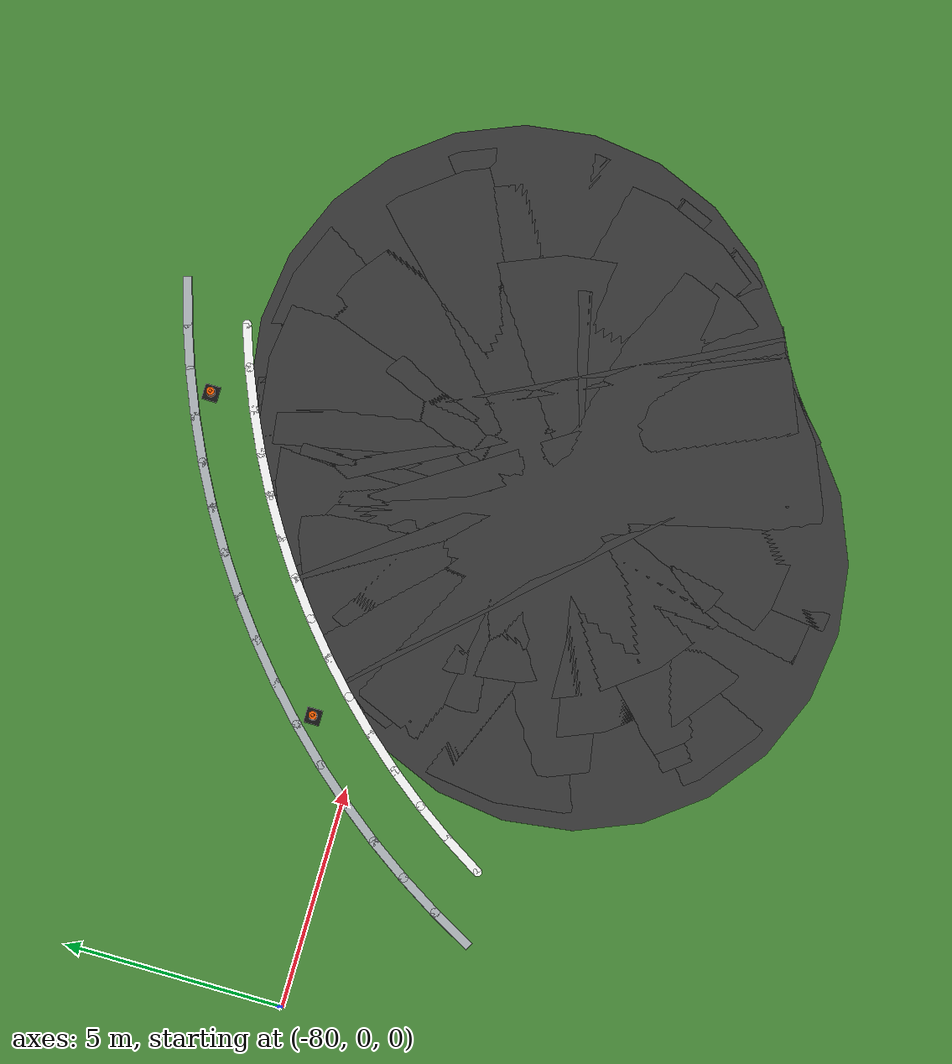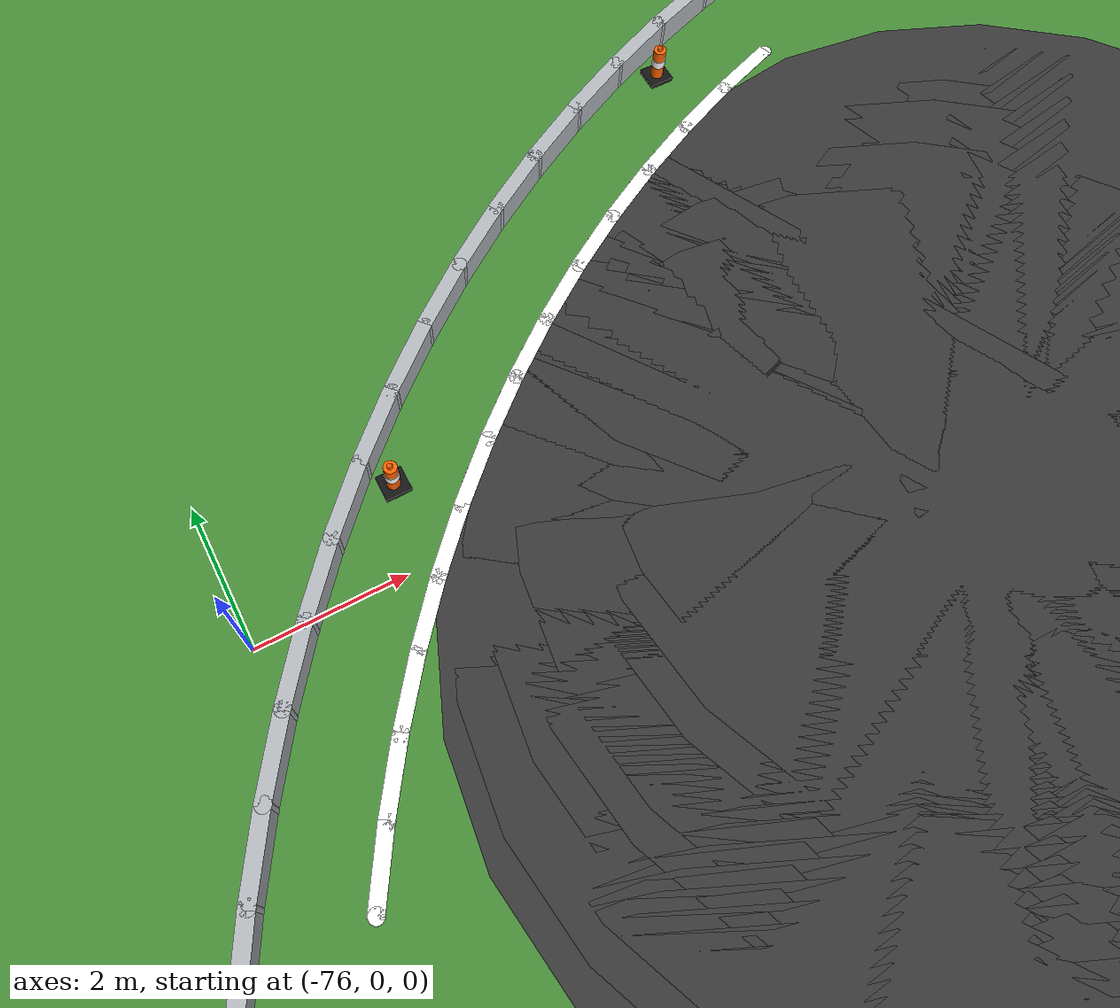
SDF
<sdf version="1.6">
 <world name="sem_silesia_ring_2026">
  <model name="ground_plane">
   <static>true</static>
   <link name="link">
    <collision name="collision">
     <geometry><plane><normal>0 0 1</normal><size>600 600</size></plane></geometry>
     <surface><friction><ode><mu>0.6</mu><mu2>0.6</mu2></ode></friction></surface>
    </collision>
    <visual name="visual">
     <geometry><plane><normal>0 0 1</normal><size>600 600</size></plane></geometry>
     <material><ambient>0.28 0.55 0.22 1</ambient><diffuse>0.28 0.55 0.22 1</diffuse></material>
    </visual>
   </link>
  </model>
  <model name="road_L_s12">
   <static>true</static>
   <pose>-65.2827 -1.1712 0.0030 0 0 3.5779</pose>
   <link name="link">
    <visual name="v">
     <geometry><box><size>0.6957 12.0000 0.0060</size></box></geometry>
     <material><ambient>0.22 0.22 0.22 1</ambient><diffuse>0.22 0.22 0.22 1</diffuse></material>
    </visual>
    <collision name="c">
     <geometry><box><size>0.6957 12.0000 0.0060</size></box></geometry>
     <surface><friction><ode><mu>0.9</mu><mu2>0.9</mu2></ode></friction></surface>
    </collision>
   </link>
  </model>
  <model name="road_L_jnt13">
   <static>true</static>
   <pose>-65.4796 -1.2651 0.0030 0 0 0</pose>
   <link name="link">
    <visual name="v">
     <geometry><cylinder><radius>6.0000</radius><length>0.0060</length></cylinder></geometry>
     <material><ambient>0.22 0.22 0.22 1</ambient><diffuse>0.22 0.22 0.22 1</diffuse></material>
    </visual>
    <collision name="c">
     <geometry><cylinder><radius>6.0000</radius><length>0.0060</length></cylinder></geometry>
     <surface><friction><ode><mu>0.9</mu><mu2>0.9</mu2></ode></friction></surface>
    </collision>
   </link>
  </model>
  <model name="road_L_s13">
   <static>true</static>
   <pose>-65.6749 -1.3624 0.0030 0 0 3.6128</pose>
   <link name="link">
    <visual name="v">
     <geometry><box><size>0.6957 12.0000 0.0060</size></box></geometry>
     <material><ambient>0.22 0.22 0.22 1</ambient><diffuse>0.22 0.22 0.22 1</diffuse></material>
    </visual>
    <collision name="c">
     <geometry><box><size>0.6957 12.0000 0.0060</size></box></geometry>
     <surface><friction><ode><mu>0.9</mu><mu2>0.9</mu2></ode></friction></surface>
    </collision>
   </link>
  </model>
  <model name="road_L_jnt14">
   <static>true</static>
   <pose>-65.8684 -1.4632 0.0030 0 0 0</pose>
   <link name="link">
    <visual name="v">
     <geometry><cylinder><radius>6.0000</radius><length>0.0060</length></cylinder></geometry>
     <material><ambient>0.22 0.22 0.22 1</ambient><diffuse>0.22 0.22 0.22 1</diffuse></material>
    </visual>
    <collision name="c">
     <geometry><cylinder><radius>6.0000</radius><length>0.0060</length></cylinder></geometry>
     <surface><friction><ode><mu>0.9</mu><mu2>0.9</mu2></ode></friction></surface>
    </collision>
   </link>
  </model>
  <model name="road_L_s14">
   <static>true</static>
   <pose>-66.0601 -1.5673 0.0030 0 0 3.6477</pose>
   <link name="link">
    <visual name="v">
     <geometry><box><size>0.6957 12.0000 0.0060</size></box></geometry>
     <material><ambient>0.22 0.22 0.22 1</ambient><diffuse>0.22 0.22 0.22 1</diffuse></material>
    </visual>
    <collision name="c">
     <geometry><box><size>0.6957 12.0000 0.0060</size></box></geometry>
     <surface><friction><ode><mu>0.9</mu><mu2>0.9</mu2></ode></friction></surface>
    </collision>
   </link>
  </model>
  <model name="road_L_jnt15">
   <static>true</static>
   <pose>-66.2500 -1.6747 0.0030 0 0 0</pose>
   <link name="link">
    <visual name="v">
     <geometry><cylinder><radius>6.0000</radius><length>0.0060</length></cylinder></geometry>
     <material><ambient>0.22 0.22 0.22 1</ambient><diffuse>0.22 0.22 0.22 1</diffuse></material>
    </visual>
    <collision name="c">
     <geometry><cylinder><radius>6.0000</radius><length>0.0060</length></cylinder></geometry>
     <surface><friction><ode><mu>0.9</mu><mu2>0.9</mu2></ode></friction></surface>
    </collision>
   </link>
  </model>
  <model name="road_L_s15">
   <static>true</static>
   <pose>-66.4380 -1.7854 0.0030 0 0 3.6826</pose>
   <link name="link">
    <visual name="v">
     <geometry><box><size>0.6957 12.0000 0.0060</size></box></geometry>
     <material><ambient>0.22 0.22 0.22 1</ambient><diffuse>0.22 0.22 0.22 1</diffuse></material>
    </visual>
    <collision name="c">
     <geometry><box><size>0.6957 12.0000 0.0060</size></box></geometry>
     <surface><friction><ode><mu>0.9</mu><mu2>0.9</mu2></ode></friction></surface>
    </collision>
   </link>
  </model>
  <model name="road_L_jnt16">
   <static>true</static>
   <pose>-66.6240 -1.8994 0.0030 0 0 0</pose>
   <link name="link">
    <visual name="v">
     <geometry><cylinder><radius>6.0000</radius><length>0.0060</length></cylinder></geometry>
     <material><ambient>0.22 0.22 0.22 1</ambient><diffuse>0.22 0.22 0.22 1</diffuse></material>
    </visual>
    <collision name="c">
     <geometry><cylinder><radius>6.0000</radius><length>0.0060</length></cylinder></geometry>
     <surface><friction><ode><mu>0.9</mu><mu2>0.9</mu2></ode></friction></surface>
    </collision>
   </link>
  </model>
  <model name="road_L_s16">
   <static>true</static>
   <pose>-66.8080 -2.0166 0.0030 0 0 3.7176</pose>
   <link name="link">
    <visual name="v">
     <geometry><box><size>0.6957 12.0000 0.0060</size></box></geometry>
     <material><ambient>0.22 0.22 0.22 1</ambient><diffuse>0.22 0.22 0.22 1</diffuse></material>
    </visual>
    <collision name="c">
     <geometry><box><size>0.6957 12.0000 0.0060</size></box></geometry>
     <surface><friction><ode><mu>0.9</mu><mu2>0.9</mu2></ode></friction></surface>
    </collision>
   </link>
  </model>
  <model name="road_L_jnt17">
   <static>true</static>
   <pose>-66.9899 -2.1370 0.0030 0 0 0</pose>
   <link name="link">
    <visual name="v">
     <geometry><cylinder><radius>6.0000</radius><length>0.0060</length></cylinder></geometry>
     <material><ambient>0.22 0.22 0.22 1</ambient><diffuse>0.22 0.22 0.22 1</diffuse></material>
    </visual>
    <collision name="c">
     <geometry><cylinder><radius>6.0000</radius><length>0.0060</length></cylinder></geometry>
     <surface><friction><ode><mu>0.9</mu><mu2>0.9</mu2></ode></friction></surface>
    </collision>
   </link>
  </model>
  <model name="road_L_s17">
   <static>true</static>
   <pose>-67.1697 -2.2606 0.0030 0 0 3.7525</pose>
   <link name="link">
    <visual name="v">
     <geometry><box><size>0.6957 12.0000 0.0060</size></box></geometry>
     <material><ambient>0.22 0.22 0.22 1</ambient><diffuse>0.22 0.22 0.22 1</diffuse></material>
    </visual>
    <collision name="c">
     <geometry><box><size>0.6957 12.0000 0.0060</size></box></geometry>
     <surface><friction><ode><mu>0.9</mu><mu2>0.9</mu2></ode></friction></surface>
    </collision>
   </link>
  </model>
  <model name="road_L_jnt18">
   <static>true</static>
   <pose>-67.3473 -2.3873 0.0030 0 0 0</pose>
   <link name="link">
    <visual name="v">
     <geometry><cylinder><radius>6.0000</radius><length>0.0060</length></cylinder></geometry>
     <material><ambient>0.22 0.22 0.22 1</ambient><diffuse>0.22 0.22 0.22 1</diffuse></material>
    </visual>
    <collision name="c">
     <geometry><cylinder><radius>6.0000</radius><length>0.0060</length></cylinder></geometry>
     <surface><friction><ode><mu>0.9</mu><mu2>0.9</mu2></ode></friction></surface>
    </collision>
   </link>
  </model>
  <model name="road_L_s18">
   <static>true</static>
   <pose>-67.5227 -2.5171 0.0030 0 0 3.7874</pose>
   <link name="link">
    <visual name="v">
     <geometry><box><size>0.6957 12.0000 0.0060</size></box></geometry>
     <material><ambient>0.22 0.22 0.22 1</ambient><diffuse>0.22 0.22 0.22 1</diffuse></material>
    </visual>
    <collision name="c">
     <geometry><box><size>0.6957 12.0000 0.0060</size></box></geometry>
     <surface><friction><ode><mu>0.9</mu><mu2>0.9</mu2></ode></friction></surface>
    </collision>
   </link>
  </model>
  <model name="road_L_jnt19">
   <static>true</static>
   <pose>-67.6958 -2.6499 0.0030 0 0 0</pose>
   <link name="link">
    <visual name="v">
     <geometry><cylinder><radius>6.0000</radius><length>0.0060</length></cylinder></geometry>
     <material><ambient>0.22 0.22 0.22 1</ambient><diffuse>0.22 0.22 0.22 1</diffuse></material>
    </visual>
    <collision name="c">
     <geometry><cylinder><radius>6.0000</radius><length>0.0060</length></cylinder></geometry>
     <surface><friction><ode><mu>0.9</mu><mu2>0.9</mu2></ode></friction></surface>
    </collision>
   </link>
  </model>
  <model name="road_L_s19">
   <static>true</static>
   <pose>-67.8665 -2.7857 0.0030 0 0 3.8223</pose>
   <link name="link">
    <visual name="v">
     <geometry><box><size>0.6957 12.0000 0.0060</size></box></geometry>
     <material><ambient>0.22 0.22 0.22 1</ambient><diffuse>0.22 0.22 0.22 1</diffuse></material>
    </visual>
    <collision name="c">
     <geometry><box><size>0.6957 12.0000 0.0060</size></box></geometry>
     <surface><friction><ode><mu>0.9</mu><mu2>0.9</mu2></ode></friction></surface>
    </collision>
   </link>
  </model>
  <model name="road_L_jnt20">
   <static>true</static>
   <pose>-68.0348 -2.9244 0.0030 0 0 0</pose>
   <link name="link">
    <visual name="v">
     <geometry><cylinder><radius>6.0000</radius><length>0.0060</length></cylinder></geometry>
     <material><ambient>0.22 0.22 0.22 1</ambient><diffuse>0.22 0.22 0.22 1</diffuse></material>
    </visual>
    <collision name="c">
     <geometry><cylinder><radius>6.0000</radius><length>0.0060</length></cylinder></geometry>
     <surface><friction><ode><mu>0.9</mu><mu2>0.9</mu2></ode></friction></surface>
    </collision>
   </link>
  </model>
  <model name="road_L_s20">
   <static>true</static>
   <pose>-68.2007 -3.0661 0.0030 0 0 3.8572</pose>
   <link name="link">
    <visual name="v">
     <geometry><box><size>0.6957 12.0000 0.0060</size></box></geometry>
     <material><ambient>0.22 0.22 0.22 1</ambient><diffuse>0.22 0.22 0.22 1</diffuse></material>
    </visual>
    <collision name="c">
     <geometry><box><size>0.6957 12.0000 0.0060</size></box></geometry>
     <surface><friction><ode><mu>0.9</mu><mu2>0.9</mu2></ode></friction></surface>
    </collision>
   </link>
  </model>
  <model name="road_L_jnt21">
   <static>true</static>
   <pose>-68.3641 -3.2107 0.0030 0 0 0</pose>
   <link name="link">
    <visual name="v">
     <geometry><cylinder><radius>6.0000</radius><length>0.0060</length></cylinder></geometry>
     <material><ambient>0.22 0.22 0.22 1</ambient><diffuse>0.22 0.22 0.22 1</diffuse></material>
    </visual>
    <collision name="c">
     <geometry><cylinder><radius>6.0000</radius><length>0.0060</length></cylinder></geometry>
     <surface><friction><ode><mu>0.9</mu><mu2>0.9</mu2></ode></friction></surface>
    </collision>
   </link>
  </model>
  <model name="road_L_s21">
   <static>true</static>
   <pose>-68.5250 -3.3581 0.0030 0 0 3.8921</pose>
   <link name="link">
    <visual name="v">
     <geometry><box><size>0.6957 12.0000 0.0060</size></box></geometry>
     <material><ambient>0.22 0.22 0.22 1</ambient><diffuse>0.22 0.22 0.22 1</diffuse></material>
    </visual>
    <collision name="c">
     <geometry><box><size>0.6957 12.0000 0.0060</size></box></geometry>
     <surface><friction><ode><mu>0.9</mu><mu2>0.9</mu2></ode></friction></surface>
    </collision>
   </link>
  </model>
  <model name="road_L_jnt22">
   <static>true</static>
   <pose>-68.6832 -3.5083 0.0030 0 0 0</pose>
   <link name="link">
    <visual name="v">
     <geometry><cylinder><radius>6.0000</radius><length>0.0060</length></cylinder></geometry>
     <material><ambient>0.22 0.22 0.22 1</ambient><diffuse>0.22 0.22 0.22 1</diffuse></material>
    </visual>
    <collision name="c">
     <geometry><cylinder><radius>6.0000</radius><length>0.0060</length></cylinder></geometry>
     <surface><friction><ode><mu>0.9</mu><mu2>0.9</mu2></ode></friction></surface>
    </collision>
   </link>
  </model>
  <model name="wl_Lo_jnt6">
   <static>true</static>
   <pose>-65.6859 4.9994 0.0050 0 0 0</pose>
   <link name="link">
    <visual name="v">
     <geometry><cylinder><radius>0.1000</radius><length>0.0040</length></cylinder></geometry>
     <material><ambient>1 1 1 1</ambient><diffuse>1 1 1 1</diffuse></material>
    </visual>
    <collision name="c">
     <geometry><cylinder><radius>0.1000</radius><length>0.0040</length></cylinder></geometry>
     <surface><friction><ode><mu>0.9</mu><mu2>0.9</mu2></ode></friction></surface>
    </collision>
   </link>
  </model>
  <model name="wl_Lo_s6">
   <static>true</static>
   <pose>-66.1420 4.8446 0.0050 0 0 3.4819</pose>
   <link name="link">
    <visual name="v">
     <geometry><box><size>1.0185 0.2000 0.0040</size></box></geometry>
     <material><ambient>1 1 1 1</ambient><diffuse>1 1 1 1</diffuse></material>
    </visual>
    <collision name="c">
     <geometry><box><size>1.0185 0.2000 0.0040</size></box></geometry>
     <surface><friction><ode><mu>0.9</mu><mu2>0.9</mu2></ode></friction></surface>
    </collision>
   </link>
  </model>
  <model name="wl_Lo_jnt7">
   <static>true</static>
   <pose>-66.5940 4.6779 0.0050 0 0 0</pose>
   <link name="link">
    <visual name="v">
     <geometry><cylinder><radius>0.1000</radius><length>0.0040</length></cylinder></geometry>
     <material><ambient>1 1 1 1</ambient><diffuse>1 1 1 1</diffuse></material>
    </visual>
    <collision name="c">
     <geometry><cylinder><radius>0.1000</radius><length>0.0040</length></cylinder></geometry>
     <surface><friction><ode><mu>0.9</mu><mu2>0.9</mu2></ode></friction></surface>
    </collision>
   </link>
  </model>
  <model name="wl_Lo_s7">
   <static>true</static>
   <pose>-67.0414 4.4994 0.0050 0 0 3.5343</pose>
   <link name="link">
    <visual name="v">
     <geometry><box><size>1.0185 0.2000 0.0040</size></box></geometry>
     <material><ambient>1 1 1 1</ambient><diffuse>1 1 1 1</diffuse></material>
    </visual>
    <collision name="c">
     <geometry><box><size>1.0185 0.2000 0.0040</size></box></geometry>
     <surface><friction><ode><mu>0.9</mu><mu2>0.9</mu2></ode></friction></surface>
    </collision>
   </link>
  </model>
  <model name="wl_Lo_jnt8">
   <static>true</static>
   <pose>-67.4840 4.3092 0.0050 0 0 0</pose>
   <link name="link">
    <visual name="v">
     <geometry><cylinder><radius>0.1000</radius><length>0.0040</length></cylinder></geometry>
     <material><ambient>1 1 1 1</ambient><diffuse>1 1 1 1</diffuse></material>
    </visual>
    <collision name="c">
     <geometry><cylinder><radius>0.1000</radius><length>0.0040</length></cylinder></geometry>
     <surface><friction><ode><mu>0.9</mu><mu2>0.9</mu2></ode></friction></surface>
    </collision>
   </link>
  </model>
  <model name="wl_Lo_s8">
   <static>true</static>
   <pose>-67.9214 4.1076 0.0050 0 0 3.5867</pose>
   <link name="link">
    <visual name="v">
     <geometry><box><size>1.0185 0.2000 0.0040</size></box></geometry>
     <material><ambient>1 1 1 1</ambient><diffuse>1 1 1 1</diffuse></material>
    </visual>
    <collision name="c">
     <geometry><box><size>1.0185 0.2000 0.0040</size></box></geometry>
     <surface><friction><ode><mu>0.9</mu><mu2>0.9</mu2></ode></friction></surface>
    </collision>
   </link>
  </model>
  <model name="wl_Lo_jnt9">
   <static>true</static>
   <pose>-68.3534 3.8945 0.0050 0 0 0</pose>
   <link name="link">
    <visual name="v">
     <geometry><cylinder><radius>0.1000</radius><length>0.0040</length></cylinder></geometry>
     <material><ambient>1 1 1 1</ambient><diffuse>1 1 1 1</diffuse></material>
    </visual>
    <collision name="c">
     <geometry><cylinder><radius>0.1000</radius><length>0.0040</length></cylinder></geometry>
     <surface><friction><ode><mu>0.9</mu><mu2>0.9</mu2></ode></friction></surface>
    </collision>
   </link>
  </model>
  <model name="wl_Lo_s9">
   <static>true</static>
   <pose>-68.7797 3.6702 0.0050 0 0 3.6390</pose>
   <link name="link">
    <visual name="v">
     <geometry><box><size>1.0185 0.2000 0.0040</size></box></geometry>
     <material><ambient>1 1 1 1</ambient><diffuse>1 1 1 1</diffuse></material>
    </visual>
    <collision name="c">
     <geometry><box><size>1.0185 0.2000 0.0040</size></box></geometry>
     <surface><friction><ode><mu>0.9</mu><mu2>0.9</mu2></ode></friction></surface>
    </collision>
   </link>
  </model>
  <model name="wl_Lo_jnt10">
   <static>true</static>
   <pose>-69.2000 3.4349 0.0050 0 0 0</pose>
   <link name="link">
    <visual name="v">
     <geometry><cylinder><radius>0.1000</radius><length>0.0040</length></cylinder></geometry>
     <material><ambient>1 1 1 1</ambient><diffuse>1 1 1 1</diffuse></material>
    </visual>
    <collision name="c">
     <geometry><cylinder><radius>0.1000</radius><length>0.0040</length></cylinder></geometry>
     <surface><friction><ode><mu>0.9</mu><mu2>0.9</mu2></ode></friction></surface>
    </collision>
   </link>
  </model>
  <model name="wl_Lo_s10">
   <static>true</static>
   <pose>-69.6140 3.1886 0.0050 0 0 3.6914</pose>
   <link name="link">
    <visual name="v">
     <geometry><box><size>1.0185 0.2000 0.0040</size></box></geometry>
     <material><ambient>1 1 1 1</ambient><diffuse>1 1 1 1</diffuse></material>
    </visual>
    <collision name="c">
     <geometry><box><size>1.0185 0.2000 0.0040</size></box></geometry>
     <surface><friction><ode><mu>0.9</mu><mu2>0.9</mu2></ode></friction></surface>
    </collision>
   </link>
  </model>
  <model name="wl_Lo_jnt11">
   <static>true</static>
   <pose>-70.0214 2.9315 0.0050 0 0 0</pose>
   <link name="link">
    <visual name="v">
     <geometry><cylinder><radius>0.1000</radius><length>0.0040</length></cylinder></geometry>
     <material><ambient>1 1 1 1</ambient><diffuse>1 1 1 1</diffuse></material>
    </visual>
    <collision name="c">
     <geometry><cylinder><radius>0.1000</radius><length>0.0040</length></cylinder></geometry>
     <surface><friction><ode><mu>0.9</mu><mu2>0.9</mu2></ode></friction></surface>
    </collision>
   </link>
  </model>
  <model name="wl_Lo_s11">
   <static>true</static>
   <pose>-70.4219 2.6639 0.0050 0 0 3.7437</pose>
   <link name="link">
    <visual name="v">
     <geometry><box><size>1.0185 0.2000 0.0040</size></box></geometry>
     <material><ambient>1 1 1 1</ambient><diffuse>1 1 1 1</diffuse></material>
    </visual>
    <collision name="c">
     <geometry><box><size>1.0185 0.2000 0.0040</size></box></geometry>
     <surface><friction><ode><mu>0.9</mu><mu2>0.9</mu2></ode></friction></surface>
    </collision>
   </link>
  </model>
  <model name="wl_Lo_jnt12">
   <static>true</static>
   <pose>-70.8152 2.3859 0.0050 0 0 0</pose>
   <link name="link">
    <visual name="v">
     <geometry><cylinder><radius>0.1000</radius><length>0.0040</length></cylinder></geometry>
     <material><ambient>1 1 1 1</ambient><diffuse>1 1 1 1</diffuse></material>
    </visual>
    <collision name="c">
     <geometry><cylinder><radius>0.1000</radius><length>0.0040</length></cylinder></geometry>
     <surface><friction><ode><mu>0.9</mu><mu2>0.9</mu2></ode></friction></surface>
    </collision>
   </link>
  </model>
  <model name="wl_Lo_s12">
   <static>true</static>
   <pose>-71.2012 2.0977 0.0050 0 0 3.7961</pose>
   <link name="link">
    <visual name="v">
     <geometry><box><size>1.0185 0.2000 0.0040</size></box></geometry>
     <material><ambient>1 1 1 1</ambient><diffuse>1 1 1 1</diffuse></material>
    </visual>
    <collision name="c">
     <geometry><box><size>1.0185 0.2000 0.0040</size></box></geometry>
     <surface><friction><ode><mu>0.9</mu><mu2>0.9</mu2></ode></friction></surface>
    </collision>
   </link>
  </model>
  <model name="wl_Lo_jnt13">
   <static>true</static>
   <pose>-71.5795 1.7995 0.0050 0 0 0</pose>
   <link name="link">
    <visual name="v">
     <geometry><cylinder><radius>0.1000</radius><length>0.0040</length></cylinder></geometry>
     <material><ambient>1 1 1 1</ambient><diffuse>1 1 1 1</diffuse></material>
    </visual>
    <collision name="c">
     <geometry><cylinder><radius>0.1000</radius><length>0.0040</length></cylinder></geometry>
     <surface><friction><ode><mu>0.9</mu><mu2>0.9</mu2></ode></friction></surface>
    </collision>
   </link>
  </model>
  <model name="wl_Lo_s13">
   <static>true</static>
   <pose>-71.9498 1.4915 0.0050 0 0 3.8485</pose>
   <link name="link">
    <visual name="v">
     <geometry><box><size>1.0185 0.2000 0.0040</size></box></geometry>
     <material><ambient>1 1 1 1</ambient><diffuse>1 1 1 1</diffuse></material>
    </visual>
    <collision name="c">
     <geometry><box><size>1.0185 0.2000 0.0040</size></box></geometry>
     <surface><friction><ode><mu>0.9</mu><mu2>0.9</mu2></ode></friction></surface>
    </collision>
   </link>
  </model>
  <model name="wl_Lo_jnt14">
   <static>true</static>
   <pose>-72.3120 1.1739 0.0050 0 0 0</pose>
   <link name="link">
    <visual name="v">
     <geometry><cylinder><radius>0.1000</radius><length>0.0040</length></cylinder></geometry>
     <material><ambient>1 1 1 1</ambient><diffuse>1 1 1 1</diffuse></material>
    </visual>
    <collision name="c">
     <geometry><cylinder><radius>0.1000</radius><length>0.0040</length></cylinder></geometry>
     <surface><friction><ode><mu>0.9</mu><mu2>0.9</mu2></ode></friction></surface>
    </collision>
   </link>
  </model>
  <model name="wl_Lo_s14">
   <static>true</static>
   <pose>-72.6657 0.8469 0.0050 0 0 3.9008</pose>
   <link name="link">
    <visual name="v">
     <geometry><box><size>1.0185 0.2000 0.0040</size></box></geometry>
     <material><ambient>1 1 1 1</ambient><diffuse>1 1 1 1</diffuse></material>
    </visual>
    <collision name="c">
     <geometry><box><size>1.0185 0.2000 0.0040</size></box></geometry>
     <surface><friction><ode><mu>0.9</mu><mu2>0.9</mu2></ode></friction></surface>
    </collision>
   </link>
  </model>
  <model name="wl_Lo_jnt15">
   <static>true</static>
   <pose>-73.0108 0.5108 0.0050 0 0 0</pose>
   <link name="link">
    <visual name="v">
     <geometry><cylinder><radius>0.1000</radius><length>0.0040</length></cylinder></geometry>
     <material><ambient>1 1 1 1</ambient><diffuse>1 1 1 1</diffuse></material>
    </visual>
    <collision name="c">
     <geometry><cylinder><radius>0.1000</radius><length>0.0040</length></cylinder></geometry>
     <surface><friction><ode><mu>0.9</mu><mu2>0.9</mu2></ode></friction></surface>
    </collision>
   </link>
  </model>
  <model name="wl_Lo_s15">
   <static>true</static>
   <pose>-73.3469 0.1657 0.0050 0 0 3.9532</pose>
   <link name="link">
    <visual name="v">
     <geometry><box><size>1.0185 0.2000 0.0040</size></box></geometry>
     <material><ambient>1 1 1 1</ambient><diffuse>1 1 1 1</diffuse></material>
    </visual>
    <collision name="c">
     <geometry><box><size>1.0185 0.2000 0.0040</size></box></geometry>
     <surface><friction><ode><mu>0.9</mu><mu2>0.9</mu2></ode></friction></surface>
    </collision>
   </link>
  </model>
  <model name="wl_Lo_jnt16">
   <static>true</static>
   <pose>-73.6739 -0.1880 0.0050 0 0 0</pose>
   <link name="link">
    <visual name="v">
     <geometry><cylinder><radius>0.1000</radius><length>0.0040</length></cylinder></geometry>
     <material><ambient>1 1 1 1</ambient><diffuse>1 1 1 1</diffuse></material>
    </visual>
    <collision name="c">
     <geometry><cylinder><radius>0.1000</radius><length>0.0040</length></cylinder></geometry>
     <surface><friction><ode><mu>0.9</mu><mu2>0.9</mu2></ode></friction></surface>
    </collision>
   </link>
  </model>
  <model name="wl_Lo_s16">
   <static>true</static>
   <pose>-73.9915 -0.5502 0.0050 0 0 4.0055</pose>
   <link name="link">
    <visual name="v">
     <geometry><box><size>1.0185 0.2000 0.0040</size></box></geometry>
     <material><ambient>1 1 1 1</ambient><diffuse>1 1 1 1</diffuse></material>
    </visual>
    <collision name="c">
     <geometry><box><size>1.0185 0.2000 0.0040</size></box></geometry>
     <surface><friction><ode><mu>0.9</mu><mu2>0.9</mu2></ode></friction></surface>
    </collision>
   </link>
  </model>
  <model name="wl_Lo_jnt17">
   <static>true</static>
   <pose>-74.2995 -0.9205 0.0050 0 0 0</pose>
   <link name="link">
    <visual name="v">
     <geometry><cylinder><radius>0.1000</radius><length>0.0040</length></cylinder></geometry>
     <material><ambient>1 1 1 1</ambient><diffuse>1 1 1 1</diffuse></material>
    </visual>
    <collision name="c">
     <geometry><cylinder><radius>0.1000</radius><length>0.0040</length></cylinder></geometry>
     <surface><friction><ode><mu>0.9</mu><mu2>0.9</mu2></ode></friction></surface>
    </collision>
   </link>
  </model>
  <model name="wl_Lo_s17">
   <static>true</static>
   <pose>-74.5977 -1.2988 0.0050 0 0 4.0579</pose>
   <link name="link">
    <visual name="v">
     <geometry><box><size>1.0185 0.2000 0.0040</size></box></geometry>
     <material><ambient>1 1 1 1</ambient><diffuse>1 1 1 1</diffuse></material>
    </visual>
    <collision name="c">
     <geometry><box><size>1.0185 0.2000 0.0040</size></box></geometry>
     <surface><friction><ode><mu>0.9</mu><mu2>0.9</mu2></ode></friction></surface>
    </collision>
   </link>
  </model>
  <model name="wl_Lo_jnt18">
   <static>true</static>
   <pose>-74.8859 -1.6848 0.0050 0 0 0</pose>
   <link name="link">
    <visual name="v">
     <geometry><cylinder><radius>0.1000</radius><length>0.0040</length></cylinder></geometry>
     <material><ambient>1 1 1 1</ambient><diffuse>1 1 1 1</diffuse></material>
    </visual>
    <collision name="c">
     <geometry><cylinder><radius>0.1000</radius><length>0.0040</length></cylinder></geometry>
     <surface><friction><ode><mu>0.9</mu><mu2>0.9</mu2></ode></friction></surface>
    </collision>
   </link>
  </model>
  <model name="wl_Lo_s18">
   <static>true</static>
   <pose>-75.1639 -2.0781 0.0050 0 0 4.1103</pose>
   <link name="link">
    <visual name="v">
     <geometry><box><size>1.0185 0.2000 0.0040</size></box></geometry>
     <material><ambient>1 1 1 1</ambient><diffuse>1 1 1 1</diffuse></material>
    </visual>
    <collision name="c">
     <geometry><box><size>1.0185 0.2000 0.0040</size></box></geometry>
     <surface><friction><ode><mu>0.9</mu><mu2>0.9</mu2></ode></friction></surface>
    </collision>
   </link>
  </model>
  <model name="wl_Lo_jnt19">
   <static>true</static>
   <pose>-75.4315 -2.4786 0.0050 0 0 0</pose>
   <link name="link">
    <visual name="v">
     <geometry><cylinder><radius>0.1000</radius><length>0.0040</length></cylinder></geometry>
     <material><ambient>1 1 1 1</ambient><diffuse>1 1 1 1</diffuse></material>
    </visual>
    <collision name="c">
     <geometry><cylinder><radius>0.1000</radius><length>0.0040</length></cylinder></geometry>
     <surface><friction><ode><mu>0.9</mu><mu2>0.9</mu2></ode></friction></surface>
    </collision>
   </link>
  </model>
  <model name="wl_Lo_s19">
   <static>true</static>
   <pose>-75.6886 -2.8860 0.0050 0 0 4.1626</pose>
   <link name="link">
    <visual name="v">
     <geometry><box><size>1.0185 0.2000 0.0040</size></box></geometry>
     <material><ambient>1 1 1 1</ambient><diffuse>1 1 1 1</diffuse></material>
    </visual>
    <collision name="c">
     <geometry><box><size>1.0185 0.2000 0.0040</size></box></geometry>
     <surface><friction><ode><mu>0.9</mu><mu2>0.9</mu2></ode></friction></surface>
    </collision>
   </link>
  </model>
  <model name="wl_Lo_jnt20">
   <static>true</static>
   <pose>-75.9349 -3.3000 0.0050 0 0 0</pose>
   <link name="link">
    <visual name="v">
     <geometry><cylinder><radius>0.1000</radius><length>0.0040</length></cylinder></geometry>
     <material><ambient>1 1 1 1</ambient><diffuse>1 1 1 1</diffuse></material>
    </visual>
    <collision name="c">
     <geometry><cylinder><radius>0.1000</radius><length>0.0040</length></cylinder></geometry>
     <surface><friction><ode><mu>0.9</mu><mu2>0.9</mu2></ode></friction></surface>
    </collision>
   </link>
  </model>
  <model name="arm_Lo_s5">
   <static>true</static>
   <pose>-65.5951 6.3887 0.2250 0 0 3.4296</pose>
   <link name="link">
    <visual name="v">
     <geometry><box><size>1.0866 0.2000 0.4500</size></box></geometry>
     <material><ambient>0.70 0.72 0.74 1</ambient><diffuse>0.70 0.72 0.74 1</diffuse></material>
    </visual>
    <collision name="c">
     <geometry><box><size>1.0866 0.2000 0.4500</size></box></geometry>
     <surface><friction><ode><mu>0.9</mu><mu2>0.9</mu2></ode></friction></surface>
    </collision>
   </link>
  </model>
  <model name="arm_Lo_jnt6">
   <static>true</static>
   <pose>-66.0876 6.2358 0.2250 0 0 0</pose>
   <link name="link">
    <visual name="v">
     <geometry><cylinder><radius>0.1000</radius><length>0.4500</length></cylinder></geometry>
     <material><ambient>0.70 0.72 0.74 1</ambient><diffuse>0.70 0.72 0.74 1</diffuse></material>
    </visual>
    <collision name="c">
     <geometry><cylinder><radius>0.1000</radius><length>0.4500</length></cylinder></geometry>
     <surface><friction><ode><mu>0.9</mu><mu2>0.9</mu2></ode></friction></surface>
    </collision>
   </link>
  </model>
  <model name="arm_Lo_s6">
   <static>true</static>
   <pose>-66.5760 6.0700 0.2250 0 0 3.4819</pose>
   <link name="link">
    <visual name="v">
     <geometry><box><size>1.0866 0.2000 0.4500</size></box></geometry>
     <material><ambient>0.70 0.72 0.74 1</ambient><diffuse>0.70 0.72 0.74 1</diffuse></material>
    </visual>
    <collision name="c">
     <geometry><box><size>1.0866 0.2000 0.4500</size></box></geometry>
     <surface><friction><ode><mu>0.9</mu><mu2>0.9</mu2></ode></friction></surface>
    </collision>
   </link>
  </model>
  <model name="arm_Lo_jnt7">
   <static>true</static>
   <pose>-67.0598 5.8915 0.2250 0 0 0</pose>
   <link name="link">
    <visual name="v">
     <geometry><cylinder><radius>0.1000</radius><length>0.4500</length></cylinder></geometry>
     <material><ambient>0.70 0.72 0.74 1</ambient><diffuse>0.70 0.72 0.74 1</diffuse></material>
    </visual>
    <collision name="c">
     <geometry><cylinder><radius>0.1000</radius><length>0.4500</length></cylinder></geometry>
     <surface><friction><ode><mu>0.9</mu><mu2>0.9</mu2></ode></friction></surface>
    </collision>
   </link>
  </model>
  <model name="arm_Lo_s7">
   <static>true</static>
   <pose>-67.5389 5.7004 0.2250 0 0 3.5343</pose>
   <link name="link">
    <visual name="v">
     <geometry><box><size>1.0866 0.2000 0.4500</size></box></geometry>
     <material><ambient>0.70 0.72 0.74 1</ambient><diffuse>0.70 0.72 0.74 1</diffuse></material>
    </visual>
    <collision name="c">
     <geometry><box><size>1.0866 0.2000 0.4500</size></box></geometry>
     <surface><friction><ode><mu>0.9</mu><mu2>0.9</mu2></ode></friction></surface>
    </collision>
   </link>
  </model>
  <model name="arm_Lo_jnt8">
   <static>true</static>
   <pose>-68.0127 5.4968 0.2250 0 0 0</pose>
   <link name="link">
    <visual name="v">
     <geometry><cylinder><radius>0.1000</radius><length>0.4500</length></cylinder></geometry>
     <material><ambient>0.70 0.72 0.74 1</ambient><diffuse>0.70 0.72 0.74 1</diffuse></material>
    </visual>
    <collision name="c">
     <geometry><cylinder><radius>0.1000</radius><length>0.4500</length></cylinder></geometry>
     <surface><friction><ode><mu>0.9</mu><mu2>0.9</mu2></ode></friction></surface>
    </collision>
   </link>
  </model>
  <model name="arm_Lo_s8">
   <static>true</static>
   <pose>-68.4811 5.2809 0.2250 0 0 3.5867</pose>
   <link name="link">
    <visual name="v">
     <geometry><box><size>1.0866 0.2000 0.4500</size></box></geometry>
     <material><ambient>0.70 0.72 0.74 1</ambient><diffuse>0.70 0.72 0.74 1</diffuse></material>
    </visual>
    <collision name="c">
     <geometry><box><size>1.0866 0.2000 0.4500</size></box></geometry>
     <surface><friction><ode><mu>0.9</mu><mu2>0.9</mu2></ode></friction></surface>
    </collision>
   </link>
  </model>
  <model name="arm_Lo_jnt9">
   <static>true</static>
   <pose>-68.9436 5.0528 0.2250 0 0 0</pose>
   <link name="link">
    <visual name="v">
     <geometry><cylinder><radius>0.1000</radius><length>0.4500</length></cylinder></geometry>
     <material><ambient>0.70 0.72 0.74 1</ambient><diffuse>0.70 0.72 0.74 1</diffuse></material>
    </visual>
    <collision name="c">
     <geometry><cylinder><radius>0.1000</radius><length>0.4500</length></cylinder></geometry>
     <surface><friction><ode><mu>0.9</mu><mu2>0.9</mu2></ode></friction></surface>
    </collision>
   </link>
  </model>
  <model name="arm_Lo_s9">
   <static>true</static>
   <pose>-69.4000 4.8127 0.2250 0 0 3.6390</pose>
   <link name="link">
    <visual name="v">
     <geometry><box><size>1.0866 0.2000 0.4500</size></box></geometry>
     <material><ambient>0.70 0.72 0.74 1</ambient><diffuse>0.70 0.72 0.74 1</diffuse></material>
    </visual>
    <collision name="c">
     <geometry><box><size>1.0866 0.2000 0.4500</size></box></geometry>
     <surface><friction><ode><mu>0.9</mu><mu2>0.9</mu2></ode></friction></surface>
    </collision>
   </link>
  </model>
  <model name="arm_Lo_jnt10">
   <static>true</static>
   <pose>-69.8500 4.5607 0.2250 0 0 0</pose>
   <link name="link">
    <visual name="v">
     <geometry><cylinder><radius>0.1000</radius><length>0.4500</length></cylinder></geometry>
     <material><ambient>0.70 0.72 0.74 1</ambient><diffuse>0.70 0.72 0.74 1</diffuse></material>
    </visual>
    <collision name="c">
     <geometry><cylinder><radius>0.1000</radius><length>0.4500</length></cylinder></geometry>
     <surface><friction><ode><mu>0.9</mu><mu2>0.9</mu2></ode></friction></surface>
    </collision>
   </link>
  </model>
  <model name="arm_Lo_s10">
   <static>true</static>
   <pose>-70.2932 4.2970 0.2250 0 0 3.6914</pose>
   <link name="link">
    <visual name="v">
     <geometry><box><size>1.0866 0.2000 0.4500</size></box></geometry>
     <material><ambient>0.70 0.72 0.74 1</ambient><diffuse>0.70 0.72 0.74 1</diffuse></material>
    </visual>
    <collision name="c">
     <geometry><box><size>1.0866 0.2000 0.4500</size></box></geometry>
     <surface><friction><ode><mu>0.9</mu><mu2>0.9</mu2></ode></friction></surface>
    </collision>
   </link>
  </model>
  <model name="arm_Lo_jnt11">
   <static>true</static>
   <pose>-70.7294 4.0218 0.2250 0 0 0</pose>
   <link name="link">
    <visual name="v">
     <geometry><cylinder><radius>0.1000</radius><length>0.4500</length></cylinder></geometry>
     <material><ambient>0.70 0.72 0.74 1</ambient><diffuse>0.70 0.72 0.74 1</diffuse></material>
    </visual>
    <collision name="c">
     <geometry><cylinder><radius>0.1000</radius><length>0.4500</length></cylinder></geometry>
     <surface><friction><ode><mu>0.9</mu><mu2>0.9</mu2></ode></friction></surface>
    </collision>
   </link>
  </model>
  <model name="arm_Lo_s11">
   <static>true</static>
   <pose>-71.1582 3.7353 0.2250 0 0 3.7437</pose>
   <link name="link">
    <visual name="v">
     <geometry><box><size>1.0866 0.2000 0.4500</size></box></geometry>
     <material><ambient>0.70 0.72 0.74 1</ambient><diffuse>0.70 0.72 0.74 1</diffuse></material>
    </visual>
    <collision name="c">
     <geometry><box><size>1.0866 0.2000 0.4500</size></box></geometry>
     <surface><friction><ode><mu>0.9</mu><mu2>0.9</mu2></ode></friction></surface>
    </collision>
   </link>
  </model>
  <model name="arm_Lo_jnt12">
   <static>true</static>
   <pose>-71.5794 3.4376 0.2250 0 0 0</pose>
   <link name="link">
    <visual name="v">
     <geometry><cylinder><radius>0.1000</radius><length>0.4500</length></cylinder></geometry>
     <material><ambient>0.70 0.72 0.74 1</ambient><diffuse>0.70 0.72 0.74 1</diffuse></material>
    </visual>
    <collision name="c">
     <geometry><cylinder><radius>0.1000</radius><length>0.4500</length></cylinder></geometry>
     <surface><friction><ode><mu>0.9</mu><mu2>0.9</mu2></ode></friction></surface>
    </collision>
   </link>
  </model>
  <model name="arm_Lo_s12">
   <static>true</static>
   <pose>-71.9926 3.1291 0.2250 0 0 3.7961</pose>
   <link name="link">
    <visual name="v">
     <geometry><box><size>1.0866 0.2000 0.4500</size></box></geometry>
     <material><ambient>0.70 0.72 0.74 1</ambient><diffuse>0.70 0.72 0.74 1</diffuse></material>
    </visual>
    <collision name="c">
     <geometry><box><size>1.0866 0.2000 0.4500</size></box></geometry>
     <surface><friction><ode><mu>0.9</mu><mu2>0.9</mu2></ode></friction></surface>
    </collision>
   </link>
  </model>
  <model name="arm_Lo_jnt13">
   <static>true</static>
   <pose>-72.3976 2.8098 0.2250 0 0 0</pose>
   <link name="link">
    <visual name="v">
     <geometry><cylinder><radius>0.1000</radius><length>0.4500</length></cylinder></geometry>
     <material><ambient>0.70 0.72 0.74 1</ambient><diffuse>0.70 0.72 0.74 1</diffuse></material>
    </visual>
    <collision name="c">
     <geometry><cylinder><radius>0.1000</radius><length>0.4500</length></cylinder></geometry>
     <surface><friction><ode><mu>0.9</mu><mu2>0.9</mu2></ode></friction></surface>
    </collision>
   </link>
  </model>
  <model name="arm_Lo_s13">
   <static>true</static>
   <pose>-72.7941 2.4800 0.2250 0 0 3.8485</pose>
   <link name="link">
    <visual name="v">
     <geometry><box><size>1.0866 0.2000 0.4500</size></box></geometry>
     <material><ambient>0.70 0.72 0.74 1</ambient><diffuse>0.70 0.72 0.74 1</diffuse></material>
    </visual>
    <collision name="c">
     <geometry><box><size>1.0866 0.2000 0.4500</size></box></geometry>
     <surface><friction><ode><mu>0.9</mu><mu2>0.9</mu2></ode></friction></surface>
    </collision>
   </link>
  </model>
  <model name="arm_Lo_jnt14">
   <static>true</static>
   <pose>-73.1819 2.1400 0.2250 0 0 0</pose>
   <link name="link">
    <visual name="v">
     <geometry><cylinder><radius>0.1000</radius><length>0.4500</length></cylinder></geometry>
     <material><ambient>0.70 0.72 0.74 1</ambient><diffuse>0.70 0.72 0.74 1</diffuse></material>
    </visual>
    <collision name="c">
     <geometry><cylinder><radius>0.1000</radius><length>0.4500</length></cylinder></geometry>
     <surface><friction><ode><mu>0.9</mu><mu2>0.9</mu2></ode></friction></surface>
    </collision>
   </link>
  </model>
  <model name="arm_Lo_s14">
   <static>true</static>
   <pose>-73.5606 1.7899 0.2250 0 0 3.9008</pose>
   <link name="link">
    <visual name="v">
     <geometry><box><size>1.0866 0.2000 0.4500</size></box></geometry>
     <material><ambient>0.70 0.72 0.74 1</ambient><diffuse>0.70 0.72 0.74 1</diffuse></material>
    </visual>
    <collision name="c">
     <geometry><box><size>1.0866 0.2000 0.4500</size></box></geometry>
     <surface><friction><ode><mu>0.9</mu><mu2>0.9</mu2></ode></friction></surface>
    </collision>
   </link>
  </model>
  <model name="arm_Lo_jnt15">
   <static>true</static>
   <pose>-73.9300 1.4300 0.2250 0 0 0</pose>
   <link name="link">
    <visual name="v">
     <geometry><cylinder><radius>0.1000</radius><length>0.4500</length></cylinder></geometry>
     <material><ambient>0.70 0.72 0.74 1</ambient><diffuse>0.70 0.72 0.74 1</diffuse></material>
    </visual>
    <collision name="c">
     <geometry><cylinder><radius>0.1000</radius><length>0.4500</length></cylinder></geometry>
     <surface><friction><ode><mu>0.9</mu><mu2>0.9</mu2></ode></friction></surface>
    </collision>
   </link>
  </model>
  <model name="arm_Lo_s15">
   <static>true</static>
   <pose>-74.2899 1.0606 0.2250 0 0 3.9532</pose>
   <link name="link">
    <visual name="v">
     <geometry><box><size>1.0866 0.2000 0.4500</size></box></geometry>
     <material><ambient>0.70 0.72 0.74 1</ambient><diffuse>0.70 0.72 0.74 1</diffuse></material>
    </visual>
    <collision name="c">
     <geometry><box><size>1.0866 0.2000 0.4500</size></box></geometry>
     <surface><friction><ode><mu>0.9</mu><mu2>0.9</mu2></ode></friction></surface>
    </collision>
   </link>
  </model>
  <model name="arm_Lo_jnt16">
   <static>true</static>
   <pose>-74.6400 0.6819 0.2250 0 0 0</pose>
   <link name="link">
    <visual name="v">
     <geometry><cylinder><radius>0.1000</radius><length>0.4500</length></cylinder></geometry>
     <material><ambient>0.70 0.72 0.74 1</ambient><diffuse>0.70 0.72 0.74 1</diffuse></material>
    </visual>
    <collision name="c">
     <geometry><cylinder><radius>0.1000</radius><length>0.4500</length></cylinder></geometry>
     <surface><friction><ode><mu>0.9</mu><mu2>0.9</mu2></ode></friction></surface>
    </collision>
   </link>
  </model>
  <model name="arm_Lo_s16">
   <static>true</static>
   <pose>-74.9800 0.2941 0.2250 0 0 4.0055</pose>
   <link name="link">
    <visual name="v">
     <geometry><box><size>1.0866 0.2000 0.4500</size></box></geometry>
     <material><ambient>0.70 0.72 0.74 1</ambient><diffuse>0.70 0.72 0.74 1</diffuse></material>
    </visual>
    <collision name="c">
     <geometry><box><size>1.0866 0.2000 0.4500</size></box></geometry>
     <surface><friction><ode><mu>0.9</mu><mu2>0.9</mu2></ode></friction></surface>
    </collision>
   </link>
  </model>
  <model name="arm_Lo_jnt17">
   <static>true</static>
   <pose>-75.3098 -0.1024 0.2250 0 0 0</pose>
   <link name="link">
    <visual name="v">
     <geometry><cylinder><radius>0.1000</radius><length>0.4500</length></cylinder></geometry>
     <material><ambient>0.70 0.72 0.74 1</ambient><diffuse>0.70 0.72 0.74 1</diffuse></material>
    </visual>
    <collision name="c">
     <geometry><cylinder><radius>0.1000</radius><length>0.4500</length></cylinder></geometry>
     <surface><friction><ode><mu>0.9</mu><mu2>0.9</mu2></ode></friction></surface>
    </collision>
   </link>
  </model>
  <model name="arm_Lo_s17">
   <static>true</static>
   <pose>-75.6291 -0.5074 0.2250 0 0 4.0579</pose>
   <link name="link">
    <visual name="v">
     <geometry><box><size>1.0866 0.2000 0.4500</size></box></geometry>
     <material><ambient>0.70 0.72 0.74 1</ambient><diffuse>0.70 0.72 0.74 1</diffuse></material>
    </visual>
    <collision name="c">
     <geometry><box><size>1.0866 0.2000 0.4500</size></box></geometry>
     <surface><friction><ode><mu>0.9</mu><mu2>0.9</mu2></ode></friction></surface>
    </collision>
   </link>
  </model>
  <model name="arm_Lo_jnt18">
   <static>true</static>
   <pose>-75.9376 -0.9206 0.2250 0 0 0</pose>
   <link name="link">
    <visual name="v">
     <geometry><cylinder><radius>0.1000</radius><length>0.4500</length></cylinder></geometry>
     <material><ambient>0.70 0.72 0.74 1</ambient><diffuse>0.70 0.72 0.74 1</diffuse></material>
    </visual>
    <collision name="c">
     <geometry><cylinder><radius>0.1000</radius><length>0.4500</length></cylinder></geometry>
     <surface><friction><ode><mu>0.9</mu><mu2>0.9</mu2></ode></friction></surface>
    </collision>
   </link>
  </model>
  <model name="arm_Lo_s18">
   <static>true</static>
   <pose>-76.2353 -1.3418 0.2250 0 0 4.1103</pose>
   <link name="link">
    <visual name="v">
     <geometry><box><size>1.0866 0.2000 0.4500</size></box></geometry>
     <material><ambient>0.70 0.72 0.74 1</ambient><diffuse>0.70 0.72 0.74 1</diffuse></material>
    </visual>
    <collision name="c">
     <geometry><box><size>1.0866 0.2000 0.4500</size></box></geometry>
     <surface><friction><ode><mu>0.9</mu><mu2>0.9</mu2></ode></friction></surface>
    </collision>
   </link>
  </model>
  <model name="arm_Lo_jnt19">
   <static>true</static>
   <pose>-76.5218 -1.7706 0.2250 0 0 0</pose>
   <link name="link">
    <visual name="v">
     <geometry><cylinder><radius>0.1000</radius><length>0.4500</length></cylinder></geometry>
     <material><ambient>0.70 0.72 0.74 1</ambient><diffuse>0.70 0.72 0.74 1</diffuse></material>
    </visual>
    <collision name="c">
     <geometry><cylinder><radius>0.1000</radius><length>0.4500</length></cylinder></geometry>
     <surface><friction><ode><mu>0.9</mu><mu2>0.9</mu2></ode></friction></surface>
    </collision>
   </link>
  </model>
  <model name="arm_Lo_s19">
   <static>true</static>
   <pose>-76.7970 -2.2068 0.2250 0 0 4.1626</pose>
   <link name="link">
    <visual name="v">
     <geometry><box><size>1.0866 0.2000 0.4500</size></box></geometry>
     <material><ambient>0.70 0.72 0.74 1</ambient><diffuse>0.70 0.72 0.74 1</diffuse></material>
    </visual>
    <collision name="c">
     <geometry><box><size>1.0866 0.2000 0.4500</size></box></geometry>
     <surface><friction><ode><mu>0.9</mu><mu2>0.9</mu2></ode></friction></surface>
    </collision>
   </link>
  </model>
  <model name="arm_Lo_jnt20">
   <static>true</static>
   <pose>-77.0607 -2.6500 0.2250 0 0 0</pose>
   <link name="link">
    <visual name="v">
     <geometry><cylinder><radius>0.1000</radius><length>0.4500</length></cylinder></geometry>
     <material><ambient>0.70 0.72 0.74 1</ambient><diffuse>0.70 0.72 0.74 1</diffuse></material>
    </visual>
    <collision name="c">
     <geometry><cylinder><radius>0.1000</radius><length>0.4500</length></cylinder></geometry>
     <surface><friction><ode><mu>0.9</mu><mu2>0.9</mu2></ode></friction></surface>
    </collision>
   </link>
  </model>
  <model name="arm_Lo_s20">
   <static>true</static>
   <pose>-77.3127 -3.1000 0.2250 0 0 4.2150</pose>
   <link name="link">
    <visual name="v">
     <geometry><box><size>1.0866 0.2000 0.4500</size></box></geometry>
     <material><ambient>0.70 0.72 0.74 1</ambient><diffuse>0.70 0.72 0.74 1</diffuse></material>
    </visual>
    <collision name="c">
     <geometry><box><size>1.0866 0.2000 0.4500</size></box></geometry>
     <surface><friction><ode><mu>0.9</mu><mu2>0.9</mu2></ode></friction></surface>
    </collision>
   </link>
  </model>
  <model name="cn_Lo_1">
   <static>true</static>
   <pose>-67.3858 5.3309 0 0 0 0</pose>
   <link name="link">
    <visual name="base">
     <pose>0 0 0.03 0 0 0</pose>
     <geometry><box><size>0.35 0.35 0.06</size></box></geometry>
     <material><ambient>0.08 0.08 0.08 1</ambient><diffuse>0.08 0.08 0.08 1</diffuse></material>
    </visual>
    <visual name="body">
     <pose>0 0 0.30 0 0 0</pose>
     <geometry><cylinder><radius>0.09</radius><length>0.50</length></cylinder></geometry>
     <material><ambient>1.0 0.38 0.0 1</ambient><diffuse>1.0 0.38 0.0 1</diffuse></material>
    </visual>
    <visual name="stripe">
     <pose>0 0 0.32 0 0 0</pose>
     <geometry><cylinder><radius>0.095</radius><length>0.12</length></cylinder></geometry>
     <material><ambient>1 1 1 1</ambient><diffuse>1 1 1 1</diffuse></material>
    </visual>
    <visual name="tip">
     <pose>0 0 0.57 0 0 0</pose>
     <geometry><sphere><radius>0.04</radius></sphere></geometry>
     <material><ambient>1.0 0.38 0.0 1</ambient><diffuse>1.0 0.38 0.0 1</diffuse></material>
    </visual>
    <collision name="c">
     <pose>0 0 0.28 0 0 0</pose>
     <geometry><cylinder><radius>0.09</radius><length>0.56</length></cylinder></geometry>
    </collision>
   </link>
  </model>
  <model name="cn_Lo_2">
   <static>true</static>
   <pose>-73.6472 1.1472 0 0 0 0</pose>
   <link name="link">
    <visual name="base">
     <pose>0 0 0.03 0 0 0</pose>
     <geometry><box><size>0.35 0.35 0.06</size></box></geometry>
     <material><ambient>0.08 0.08 0.08 1</ambient><diffuse>0.08 0.08 0.08 1</diffuse></material>
    </visual>
    <visual name="body">
     <pose>0 0 0.30 0 0 0</pose>
     <geometry><cylinder><radius>0.09</radius><length>0.50</length></cylinder></geometry>
     <material><ambient>1.0 0.38 0.0 1</ambient><diffuse>1.0 0.38 0.0 1</diffuse></material>
    </visual>
    <visual name="stripe">
     <pose>0 0 0.32 0 0 0</pose>
     <geometry><cylinder><radius>0.095</radius><length>0.12</length></cylinder></geometry>
     <material><ambient>1 1 1 1</ambient><diffuse>1 1 1 1</diffuse></material>
    </visual>
    <visual name="tip">
     <pose>0 0 0.57 0 0 0</pose>
     <geometry><sphere><radius>0.04</radius></sphere></geometry>
     <material><ambient>1.0 0.38 0.0 1</ambient><diffuse>1.0 0.38 0.0 1</diffuse></material>
    </visual>
    <collision name="c">
     <pose>0 0 0.28 0 0 0</pose>
     <geometry><cylinder><radius>0.09</radius><length>0.56</length></cylinder></geometry>
    </collision>
   </link>
  </model>
 </world>
</sdf>
